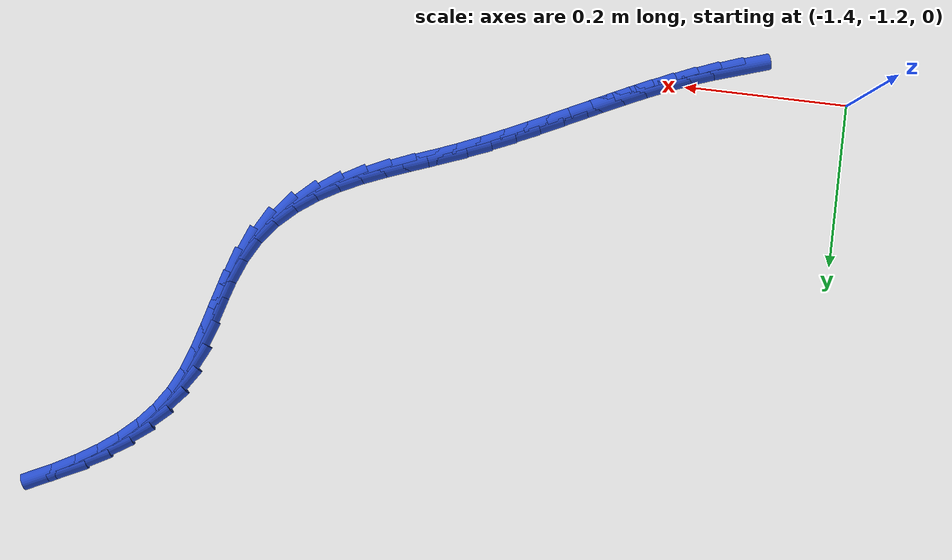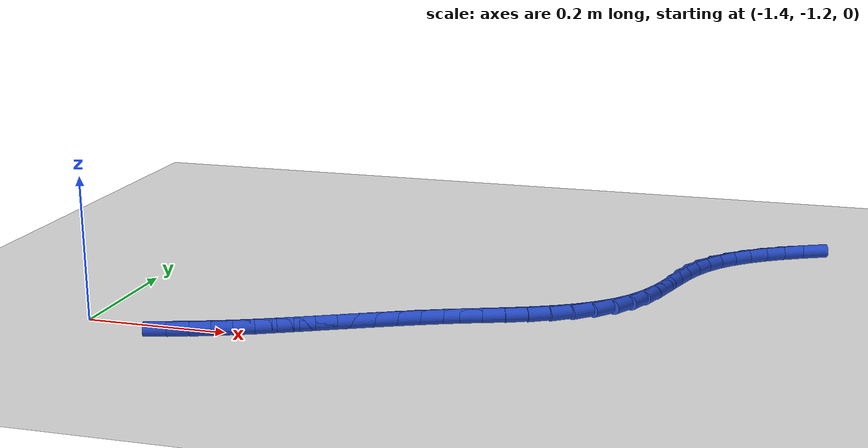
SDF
<sdf version="1.6">
 <world name="default">
  <model name="ground_plane">
   <static>1</static>
   <link name="link">
    <collision name="collision">
     <geometry><plane><normal>0 0 1</normal><size>100 100</size></plane></geometry>
     <surface><friction><ode><mu>100</mu><mu2>50</mu2></ode></friction></surface>
    </collision>
    <visual name="visual">
     <cast_shadows>0</cast_shadows>
     <geometry><plane><normal>0 0 1</normal><size>100 100</size></plane></geometry>
     <material>
      <script><uri>file://media/materials/scripts/gazebo.material</uri><name>Gazebo/WhiteGlow</name></script>
     </material>
    </visual>
   </link>
  </model>
  <model name="line">
   <link name="link_217">
    <pose>-1.2597691315229136 -1.2295364482376374 0.01 0 1.57 0.3089298255636339</pose>
    <collision name="collision">
     <geometry><cylinder><radius>0.01</radius><length>0.08</length></cylinder></geometry>
    </collision>
    <visual name="visual">
     <material>
      <script><name>Gazebo/Blue</name><uri>file://media/materials/scripts/gazebo.material</uri></script>
     </material>
     <geometry><cylinder><radius>0.01</radius><length>0.08</length></cylinder></geometry>
    </visual>
   </link>
   <link name="link_218">
    <pose>-1.2302468445517354 -1.2201144716310863 0.01 0 1.57 0.3475926835934715</pose>
    <collision name="collision">
     <geometry><cylinder><radius>0.01</radius><length>0.08</length></cylinder></geometry>
    </collision>
    <visual name="visual">
     <material>
      <script><name>Gazebo/Blue</name><uri>file://media/materials/scripts/gazebo.material</uri></script>
     </material>
     <geometry><cylinder><radius>0.01</radius><length>0.08</length></cylinder></geometry>
    </visual>
   </link>
   <link name="link_219">
    <pose>-1.2024758056526554 -1.210052946381155 0.01 0 1.57 0.3826351501723117</pose>
    <collision name="collision">
     <geometry><cylinder><radius>0.01</radius><length>0.08</length></cylinder></geometry>
    </collision>
    <visual name="visual">
     <material>
      <script><name>Gazebo/Blue</name><uri>file://media/materials/scripts/gazebo.material</uri></script>
     </material>
     <geometry><cylinder><radius>0.01</radius><length>0.08</length></cylinder></geometry>
    </visual>
   </link>
   <link name="link_220">
    <pose>-1.1759060624007618 -1.1993593823591577 0.01 0 1.57 0.4117234625966926</pose>
    <collision name="collision">
     <geometry><cylinder><radius>0.01</radius><length>0.08</length></cylinder></geometry>
    </collision>
    <visual name="visual">
     <material>
      <script><name>Gazebo/Blue</name><uri>file://media/materials/scripts/gazebo.material</uri></script>
     </material>
     <geometry><cylinder><radius>0.01</radius><length>0.08</length></cylinder></geometry>
    </visual>
   </link>
   <link name="link_221">
    <pose>-1.1499876623711422 -1.1880412894364099 0.01 0 1.57 0.4330324810992204</pose>
    <collision name="collision">
     <geometry><cylinder><radius>0.01</radius><length>0.08</length></cylinder></geometry>
    </collision>
    <visual name="visual">
     <material>
      <script><name>Gazebo/Blue</name><uri>file://media/materials/scripts/gazebo.material</uri></script>
     </material>
     <geometry><cylinder><radius>0.01</radius><length>0.08</length></cylinder></geometry>
    </visual>
   </link>
   <link name="link_222">
    <pose>-1.1241706531388858 -1.1761061774842265 0.01 0 1.57 0.44598290788291933</pose>
    <collision name="collision">
     <geometry><cylinder><radius>0.01</radius><length>0.08</length></cylinder></geometry>
    </collision>
    <visual name="visual">
     <material>
      <script><name>Gazebo/Blue</name><uri>file://media/materials/scripts/gazebo.material</uri></script>
     </material>
     <geometry><cylinder><radius>0.01</radius><length>0.08</length></cylinder></geometry>
    </visual>
   </link>
   <link name="link_223">
    <pose>-1.0979933340222559 -1.1635905345925954 0.01 0 1.57 0.4523205103940364</pose>
    <collision name="collision">
     <geometry><cylinder><radius>0.01</radius><length>0.08</length></cylinder></geometry>
    </collision>
    <visual name="visual">
     <material>
      <script><name>Gazebo/Blue</name><uri>file://media/materials/scripts/gazebo.material</uri></script>
     </material>
     <geometry><cylinder><radius>0.01</radius><length>0.08</length></cylinder></geometry>
    </visual>
   </link>
   <link name="link_224">
    <pose>-1.0713737649557806 -1.1506555465150865 0.01 0 1.57 0.4529047972306652</pose>
    <collision name="collision">
     <geometry><cylinder><radius>0.01</radius><length>0.08</length></cylinder></geometry>
    </collision>
    <visual name="visual">
     <material>
      <script><name>Gazebo/Blue</name><uri>file://media/materials/scripts/gazebo.material</uri></script>
     </material>
     <geometry><cylinder><radius>0.01</radius><length>0.08</length></cylinder></geometry>
    </visual>
   </link>
   <link name="link_225">
    <pose>-1.0443321336716263 -1.1374959335457349 0.01 0 1.57 0.44801250702933565</pose>
    <collision name="collision">
     <geometry><cylinder><radius>0.01</radius><length>0.08</length></cylinder></geometry>
    </collision>
    <visual name="visual">
     <material>
      <script><name>Gazebo/Blue</name><uri>file://media/materials/scripts/gazebo.material</uri></script>
     </material>
     <geometry><cylinder><radius>0.01</radius><length>0.08</length></cylinder></geometry>
    </visual>
   </link>
   <link name="link_226">
    <pose>-1.016888629272648 -1.1243064164286516 0.01 0 1.57 0.4377955558627509</pose>
    <collision name="collision">
     <geometry><cylinder><radius>0.01</radius><length>0.08</length></cylinder></geometry>
    </collision>
    <visual name="visual">
     <material>
      <script><name>Gazebo/Blue</name><uri>file://media/materials/scripts/gazebo.material</uri></script>
     </material>
     <geometry><cylinder><radius>0.01</radius><length>0.08</length></cylinder></geometry>
    </visual>
   </link>
   <link name="link_227">
    <pose>-0.9890634408617023 -1.111281715907949 0.01 0 1.57 0.42229781717587367</pose>
    <collision name="collision">
     <geometry><cylinder><radius>0.01</radius><length>0.08</length></cylinder></geometry>
    </collision>
    <visual name="visual">
     <material>
      <script><name>Gazebo/Blue</name><uri>file://media/materials/scripts/gazebo.material</uri></script>
     </material>
     <geometry><cylinder><radius>0.01</radius><length>0.08</length></cylinder></geometry>
    </visual>
   </link>
   <link name="link_228">
    <pose>-0.9608767575416434 -1.0986165527277387 0.01 0 1.57 0.4014700466159645</pose>
    <collision name="collision">
     <geometry><cylinder><radius>0.01</radius><length>0.08</length></cylinder></geometry>
    </collision>
    <visual name="visual">
     <material>
      <script><name>Gazebo/Blue</name><uri>file://media/materials/scripts/gazebo.material</uri></script>
     </material>
     <geometry><cylinder><radius>0.01</radius><length>0.08</length></cylinder></geometry>
    </visual>
   </link>
   <link name="link_229">
    <pose>-0.9323487684153273 -1.086505647632132 0.01 0 1.57 0.37568398103370854</pose>
    <collision name="collision">
     <geometry><cylinder><radius>0.01</radius><length>0.08</length></cylinder></geometry>
    </collision>
    <visual name="visual">
     <material>
      <script><name>Gazebo/Blue</name><uri>file://media/materials/scripts/gazebo.material</uri></script>
     </material>
     <geometry><cylinder><radius>0.01</radius><length>0.08</length></cylinder></geometry>
    </visual>
   </link>
   <link name="link_230">
    <pose>-0.9035054818183158 -1.0751293723559734 0.01 0 1.57 0.3580296963242119</pose>
    <collision name="collision">
     <geometry><cylinder><radius>0.01</radius><length>0.08</length></cylinder></geometry>
    </collision>
    <visual name="visual">
     <material>
      <script><name>Gazebo/Blue</name><uri>file://media/materials/scripts/gazebo.material</uri></script>
     </material>
     <geometry><cylinder><radius>0.01</radius><length>0.08</length></cylinder></geometry>
    </visual>
   </link>
   <link name="link_231">
    <pose>-0.8745274255693095 -1.0642870859461795 0.01 0 1.57 0.3628372840987485</pose>
    <collision name="collision">
     <geometry><cylinder><radius>0.01</radius><length>0.08</length></cylinder></geometry>
    </collision>
    <visual name="visual">
     <material>
      <script><name>Gazebo/Blue</name><uri>file://media/materials/scripts/gazebo.material</uri></script>
     </material>
     <geometry><cylinder><radius>0.01</radius><length>0.08</length></cylinder></geometry>
    </visual>
   </link>
   <link name="link_232">
    <pose>-0.8457620899103165 -1.0533664530769142 0.01 0 1.57 0.39125456559017885</pose>
    <collision name="collision">
     <geometry><cylinder><radius>0.01</radius><length>0.08</length></cylinder></geometry>
    </collision>
    <visual name="visual">
     <material>
      <script><name>Gazebo/Blue</name><uri>file://media/materials/scripts/gazebo.material</uri></script>
     </material>
     <geometry><cylinder><radius>0.01</radius><length>0.08</length></cylinder></geometry>
    </visual>
   </link>
   <link name="link_233">
    <pose>-0.8175652775844254 -1.0417346415353792 0.01 0 1.57 0.4440881095343505</pose>
    <collision name="collision">
     <geometry><cylinder><radius>0.01</radius><length>0.08</length></cylinder></geometry>
    </collision>
    <visual name="visual">
     <material>
      <script><name>Gazebo/Blue</name><uri>file://media/materials/scripts/gazebo.material</uri></script>
     </material>
     <geometry><cylinder><radius>0.01</radius><length>0.08</length></cylinder></geometry>
    </visual>
   </link>
   <link name="link_234">
    <pose>-0.7902927913347233 -1.0287588191087749 0.01 0 1.57 0.5220383842747419</pose>
    <collision name="collision">
     <geometry><cylinder><radius>0.01</radius><length>0.08</length></cylinder></geometry>
    </collision>
    <visual name="visual">
     <material>
      <script><name>Gazebo/Blue</name><uri>file://media/materials/scripts/gazebo.material</uri></script>
     </material>
     <geometry><cylinder><radius>0.01</radius><length>0.08</length></cylinder></geometry>
    </visual>
   </link>
   <link name="link_235">
    <pose>-0.7643004339042989 -1.0138061535843035 0.01 0 1.57 0.6247180068882036</pose>
    <collision name="collision">
     <geometry><cylinder><radius>0.01</radius><length>0.08</length></cylinder></geometry>
    </collision>
    <visual name="visual">
     <material>
      <script><name>Gazebo/Blue</name><uri>file://media/materials/scripts/gazebo.material</uri></script>
     </material>
     <geometry><cylinder><radius>0.01</radius><length>0.08</length></cylinder></geometry>
    </visual>
   </link>
   <link name="link_236">
    <pose>-0.7399440080362399 -0.9962438127491661 0.01 0 1.57 0.7496142498440685</pose>
    <collision name="collision">
     <geometry><cylinder><radius>0.01</radius><length>0.08</length></cylinder></geometry>
    </collision>
    <visual name="visual">
     <material>
      <script><name>Gazebo/Blue</name><uri>file://media/materials/scripts/gazebo.material</uri></script>
     </material>
     <geometry><cylinder><radius>0.01</radius><length>0.08</length></cylinder></geometry>
    </visual>
   </link>
   <link name="link_237">
    <pose>-0.7177200490446832 -0.9755560585464672 0.01 0 1.57 0.898643482447375</pose>
    <collision name="collision">
     <geometry><cylinder><radius>0.01</radius><length>0.08</length></cylinder></geometry>
    </collision>
    <visual name="visual">
     <material>
      <script><name>Gazebo/Blue</name><uri>file://media/materials/scripts/gazebo.material</uri></script>
     </material>
     <geometry><cylinder><radius>0.01</radius><length>0.08</length></cylinder></geometry>
    </visual>
   </link>
   <link name="link_238">
    <pose>-0.6988208935694674 -0.9518063679026535 0.01 0 1.57 1.0629532164443918</pose>
    <collision name="collision">
     <geometry><cylinder><radius>0.01</radius><length>0.08</length></cylinder></geometry>
    </collision>
    <visual name="visual">
     <material>
      <script><name>Gazebo/Blue</name><uri>file://media/materials/scripts/gazebo.material</uri></script>
     </material>
     <geometry><cylinder><radius>0.01</radius><length>0.08</length></cylinder></geometry>
    </visual>
   </link>
   <link name="link_239">
    <pose>-0.6841019305258418 -0.9253586419021324 0.01 0 1.57 1.189326446770578</pose>
    <collision name="collision">
     <geometry><cylinder><radius>0.01</radius><length>0.08</length></cylinder></geometry>
    </collision>
    <visual name="visual">
     <material>
      <script><name>Gazebo/Blue</name><uri>file://media/materials/scripts/gazebo.material</uri></script>
     </material>
     <geometry><cylinder><radius>0.01</radius><length>0.08</length></cylinder></geometry>
    </visual>
   </link>
   <link name="link_240">
    <pose>-0.6727083229867892 -0.8969540206912358 0.01 0 1.57 1.2672988842712067</pose>
    <collision name="collision">
     <geometry><cylinder><radius>0.01</radius><length>0.08</length></cylinder></geometry>
    </collision>
    <visual name="visual">
     <material>
      <script><name>Gazebo/Blue</name><uri>file://media/materials/scripts/gazebo.material</uri></script>
     </material>
     <geometry><cylinder><radius>0.01</radius><length>0.08</length></cylinder></geometry>
    </visual>
   </link>
   <link name="link_241">
    <pose>-0.6634548534476576 -0.8674065067484351 0.01 0 1.57 1.299863525551817</pose>
    <collision name="collision">
     <geometry><cylinder><radius>0.01</radius><length>0.08</length></cylinder></geometry>
    </collision>
    <visual name="visual">
     <material>
      <script><name>Gazebo/Blue</name><uri>file://media/materials/scripts/gazebo.material</uri></script>
     </material>
     <geometry><cylinder><radius>0.01</radius><length>0.08</length></cylinder></geometry>
    </visual>
   </link>
   <link name="link_242">
    <pose>-0.6551563044037958 -0.8375301025522021 0.01 0 1.57 1.2883703361860306</pose>
    <collision name="collision">
     <geometry><cylinder><radius>0.01</radius><length>0.08</length></cylinder></geometry>
    </collision>
    <visual name="visual">
     <material>
      <script><name>Gazebo/Blue</name><uri>file://media/materials/scripts/gazebo.material</uri></script>
     </material>
     <geometry><cylinder><radius>0.01</radius><length>0.08</length></cylinder></geometry>
    </visual>
   </link>
   <link name="link_243">
    <pose>-0.6466274583505511 -0.8081388105810073 0.01 0 1.57 1.2305710337315552</pose>
    <collision name="collision">
     <geometry><cylinder><radius>0.01</radius><length>0.08</length></cylinder></geometry>
    </collision>
    <visual name="visual">
     <material>
      <script><name>Gazebo/Blue</name><uri>file://media/materials/scripts/gazebo.material</uri></script>
     </material>
     <geometry><cylinder><radius>0.01</radius><length>0.08</length></cylinder></geometry>
    </visual>
   </link>
   <link name="link_244">
    <pose>-0.6366830977832724 -0.7800466333133242 0.01 0 1.57 1.1216895678951124</pose>
    <collision name="collision">
     <geometry><cylinder><radius>0.01</radius><length>0.08</length></cylinder></geometry>
    </collision>
    <visual name="visual">
     <material>
      <script><name>Gazebo/Blue</name><uri>file://media/materials/scripts/gazebo.material</uri></script>
     </material>
     <geometry><cylinder><radius>0.01</radius><length>0.08</length></cylinder></geometry>
    </visual>
   </link>
   <link name="link_245">
    <pose>-0.6241561692678499 -0.7540546674151017 0.01 0 1.57 0.9842509461479796</pose>
    <collision name="collision">
     <geometry><cylinder><radius>0.01</radius><length>0.08</length></cylinder></geometry>
    </collision>
    <visual name="visual">
     <material>
      <script><name>Gazebo/Blue</name><uri>file://media/materials/scripts/gazebo.material</uri></script>
     </material>
     <geometry><cylinder><radius>0.01</radius><length>0.08</length></cylinder></geometry>
    </visual>
   </link>
   <link name="link_246">
    <pose>-0.6085122410436505 -0.7305145234805415 0.01 0 1.57 0.8550827352801066</pose>
    <collision name="collision">
     <geometry><cylinder><radius>0.01</radius><length>0.08</length></cylinder></geometry>
    </collision>
    <visual name="visual">
     <material>
      <script><name>Gazebo/Blue</name><uri>file://media/materials/scripts/gazebo.material</uri></script>
     </material>
     <geometry><cylinder><radius>0.01</radius><length>0.08</length></cylinder></geometry>
    </visual>
   </link>
   <link name="link_247">
    <pose>-0.589998516305656 -0.7092224501229478 0.01 0 1.57 0.7406967938373029</pose>
    <collision name="collision">
     <geometry><cylinder><radius>0.01</radius><length>0.08</length></cylinder></geometry>
    </collision>
    <visual name="visual">
     <material>
      <script><name>Gazebo/Blue</name><uri>file://media/materials/scripts/gazebo.material</uri></script>
     </material>
     <geometry><cylinder><radius>0.01</radius><length>0.08</length></cylinder></geometry>
    </visual>
   </link>
   <link name="link_248">
    <pose>-0.5689105835685071 -0.6899403175456289 0.01 0 1.57 0.6431013045678855</pose>
    <collision name="collision">
     <geometry><cylinder><radius>0.01</radius><length>0.08</length></cylinder></geometry>
    </collision>
    <visual name="visual">
     <material>
      <script><name>Gazebo/Blue</name><uri>file://media/materials/scripts/gazebo.material</uri></script>
     </material>
     <geometry><cylinder><radius>0.01</radius><length>0.08</length></cylinder></geometry>
    </visual>
   </link>
   <link name="link_249">
    <pose>-0.5455440313468443 -0.6724299959518915 0.01 0 1.57 0.5623675435674205</pose>
    <collision name="collision">
     <geometry><cylinder><radius>0.01</radius><length>0.08</length></cylinder></geometry>
    </collision>
    <visual name="visual">
     <material>
      <script><name>Gazebo/Blue</name><uri>file://media/materials/scripts/gazebo.material</uri></script>
     </material>
     <geometry><cylinder><radius>0.01</radius><length>0.08</length></cylinder></geometry>
    </visual>
   </link>
   <link name="link_250">
    <pose>-0.5201944481553082 -0.6564533555450434 0.01 0 1.57 0.49745259577326995</pose>
    <collision name="collision">
     <geometry><cylinder><radius>0.01</radius><length>0.08</length></cylinder></geometry>
    </collision>
    <visual name="visual">
     <material>
      <script><name>Gazebo/Blue</name><uri>file://media/materials/scripts/gazebo.material</uri></script>
     </material>
     <geometry><cylinder><radius>0.01</radius><length>0.08</length></cylinder></geometry>
    </visual>
   </link>
   <link name="link_251">
    <pose>-0.4931574225085397 -0.6417722665283919 0.01 0 1.57 0.4468852627485072</pose>
    <collision name="collision">
     <geometry><cylinder><radius>0.01</radius><length>0.08</length></cylinder></geometry>
    </collision>
    <visual name="visual">
     <material>
      <script><name>Gazebo/Blue</name><uri>file://media/materials/scripts/gazebo.material</uri></script>
     </material>
     <geometry><cylinder><radius>0.01</radius><length>0.08</length></cylinder></geometry>
    </visual>
   </link>
  </model>
 </world>
</sdf>
